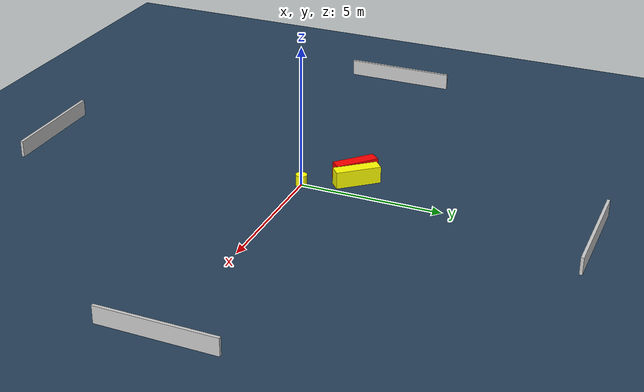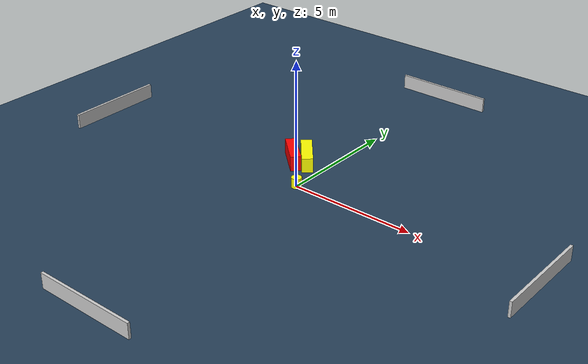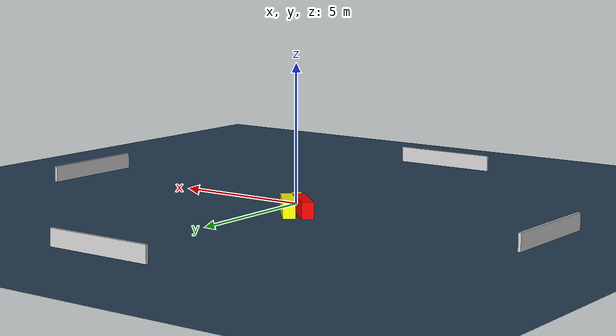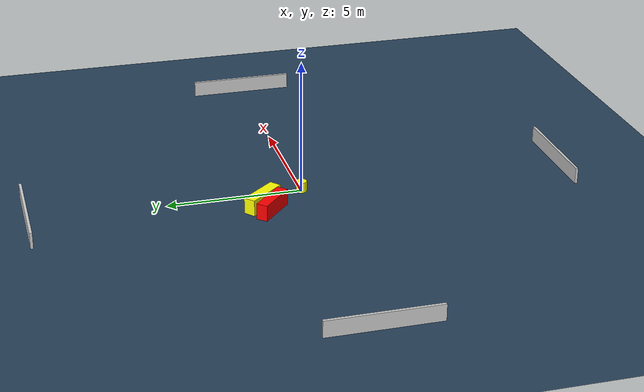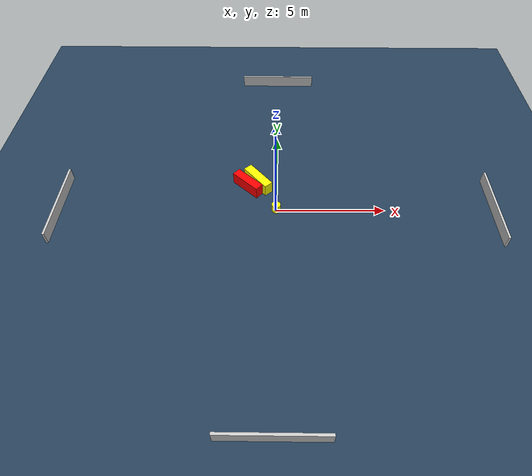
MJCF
<?xml version="1.0" ?>
<mujoco model="generated_environment">
  <option timestep="0.01" integrator="RK4" cone="elliptic"/>
  <default>
    <geom density="1"/>
  </default>
  <asset>
    <texture builtin="gradient" height="3072" name="skybox" rgb1="0.3 0.5 0.7" rgb2="0 0 0" type="skybox" width="512"/>
    <texture builtin="checker" height="300" name="groundplane" rgb1="0.2 0.3 0.4" rgb2="0.1 0.2 0.3" type="2d" width="300"/>
    <material name="groundplane" reflectance="0.2" texrepeat="5 5" texture="groundplane"/>
  </asset>
  <worldbody>
    <light dir="0 0 -1" directional="true" pos="0 0 1.5"/>
    <geom condim="3" friction="0.5 0.005 0.001" material="groundplane" name="floor" pos="0 0 0" size="0 0 0.05" type="plane"/>
    <body name="walls">
      <geom name="wall_1" condim="4" pos="-10.0 0.0 0.3" rgba="0.800000011920929 0.800000011920929 0.800000011920929 1.0" size="0.05 2.0 0.3" type="box"/>
      <geom name="wall_2" condim="4" pos="10.0 0.0 0.3" rgba="0.800000011920929 0.800000011920929 0.800000011920929 1.0" size="0.05 2.0 0.3" type="box"/>
      <geom name="wall_3" condim="4" pos="0.0 -10.0 0.3" rgba="0.800000011920929 0.800000011920929 0.800000011920929 1.0" size="2.0 0.05 0.3" type="box"/>
      <geom name="wall_4" condim="4" pos="0.0 10.0 0.3" rgba="0.800000011920929 0.800000011920929 0.800000011920929 1.0" size="2.0 0.05 0.3" type="box"/>
    </body>
    <body name="robot">
      <joint name="joint_x" type="slide" pos="0 0 0" axis="1 0 0"/>
      <joint name="joint_y" type="slide" pos="0 0 0" axis="0 1 0"/>
      <geom name="robot" type="cylinder" pos="0.0 0.0 0.2" size="0.2 0.2 0.0" mass="5.0" friction="1.0 0.005 0.0001" condim="4" rgba="1.0 1.0 0.0 1.0"/>
    </body>
    <body name="obstacle_1_movable">
      <geom name="obstacle_1_movable" condim="4" pos="-0.8803243743955319 1.674372484725585 0.3" euler="0 0 310.6796709563349" friction="0.0 0.005 0.001" rgba="1.0 1.0 0.0 1.0" size="0.7988897766410079 0.21867154772647868 0.3" type="box" mass="0.1"/>
      <joint type="free"/>
    </body>
    <body name="obstacle_2_static">
      <geom name="obstacle_2_static" condim="4" pos="-1.3647860128011426 1.4307244208092849 0.3" euler="0 0 137.74427026569748" friction="0.0 0.005 0.001" rgba="1.0 0.0 0.0 1.0" size="0.7744490611610269 0.20941906954959372 0.3" type="box"/>
    </body>
  </worldbody>
  <actuator>
    <motor name="actuator_x" joint="joint_x" gear="1" ctrlrange="-1 1"/>
    <motor name="actuator_y" joint="joint_y" gear="1" ctrlrange="-1 1"/>
  </actuator>
</mujoco>
